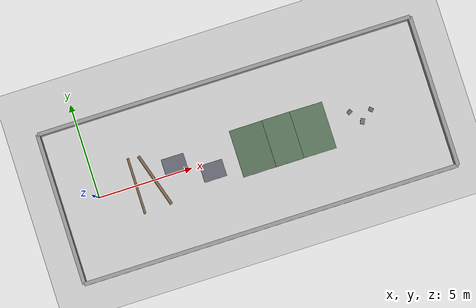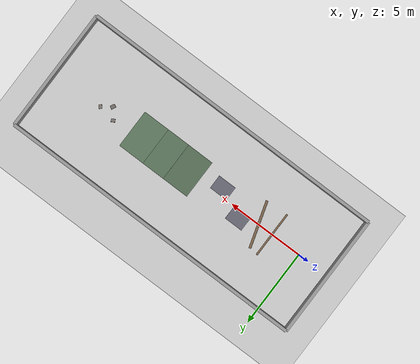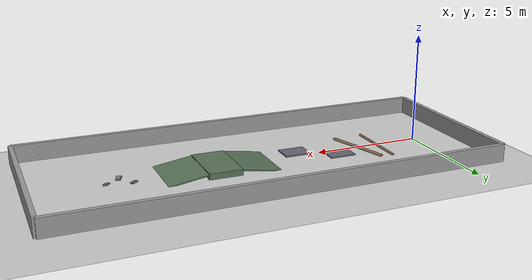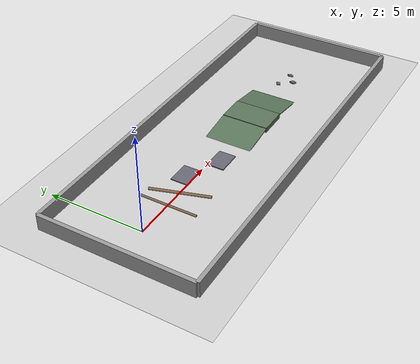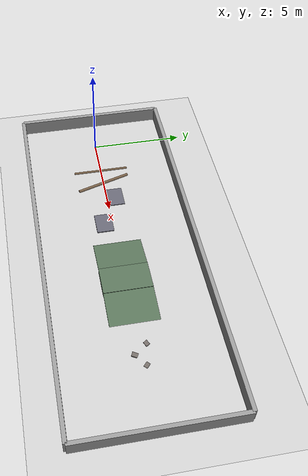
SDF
<?xml version="1.0"?>
<sdf version="1.6">
  <world name="rough_terrain">
    <plugin filename="gz-sim-physics-system" name="gz::sim::systems::Physics"/>
    <plugin filename="gz-sim-user-commands-system" name="gz::sim::systems::UserCommands"/>
    <plugin filename="gz-sim-sensors-system" name="gz::sim::systems::Sensors">
      <render_engine>ogre2</render_engine>
    </plugin>
    <plugin filename="gz-sim-imu-system" name="gz::sim::systems::Imu"/>
    <plugin filename="gz-sim-forcetorque-system" name="ignition::gazebo::systems::ForceTorque"/>
    <plugin filename="gz-sim-contact-system" name="gz::sim::systems::Contact"/>
    <plugin filename="gz-sim-scene-broadcaster-system" name="gz::sim::systems::SceneBroadcaster"/>

    <!-- model://sun 与 model://ground_plane 走 Fuel 解析，在 Ignition 下
         无法离线获取（Error Code 13），改为内联定义 -->
    <light name="sun" type="directional">
      <cast_shadows>true</cast_shadows>
      <pose>0 0 10 0 0 0</pose>
      <diffuse>0.8 0.8 0.8 1</diffuse>
      <specular>0.2 0.2 0.2 1</specular>
      <direction>-0.5 0.1 -0.9</direction>
    </light>

    <model name="ground_plane">
      <static>true</static>
      <link name="link">
        <collision name="collision">
          <geometry><plane><normal>0 0 1</normal><size>100 100</size></plane></geometry>
          <surface><friction><ode><mu>1.0</mu><mu2>1.0</mu2></ode></friction></surface>
        </collision>
        <visual name="visual">
          <geometry><plane><normal>0 0 1</normal><size>100 100</size></plane></geometry>
          <material><ambient>0.8 0.8 0.8 1</ambient><diffuse>0.8 0.8 0.8 1</diffuse></material>
        </visual>
      </link>
    </model>

    <physics type="ode">
      <max_step_size>0.001</max_step_size>
      <real_time_update_rate>1000</real_time_update_rate>
    </physics>

    <!-- 连续起伏带：一排横向减速带（半圆柱），考验左右轮交替冲击 -->
    <model name="bump_1">
      <static>true</static>
      <pose>2.0 0 0 0 0 0</pose>
      <link name="link">
        <collision name="c"><geometry><cylinder><radius>0.06</radius><length>3.0</length></cylinder></geometry></collision>
        <visual name="v"><geometry><cylinder><radius>0.06</radius><length>3.0</length></cylinder></geometry>
          <material><ambient>0.5 0.4 0.3 1</ambient><diffuse>0.5 0.4 0.3 1</diffuse></material></visual>
        <pose>0 0 0 1.5708 0 0</pose>
      </link>
    </model>

    <model name="bump_2">
      <static>true</static>
      <pose>3.0 0 0 0 0 0.3</pose>
      <link name="link">
        <collision name="c"><geometry><cylinder><radius>0.08</radius><length>3.0</length></cylinder></geometry></collision>
        <visual name="v"><geometry><cylinder><radius>0.08</radius><length>3.0</length></cylinder></geometry>
          <material><ambient>0.5 0.4 0.3 1</ambient><diffuse>0.5 0.4 0.3 1</diffuse></material></visual>
        <pose>0 0 0 1.5708 0 0</pose>
      </link>
    </model>

    <!-- 单侧台阶：只有左轮压上，考验侧倾调平。
         高度需 < 轮半径(0.12m) 才能爬上，否则纯轮式无法在无辅助情况下越过。 -->
    <model name="half_step_1">
      <static>true</static>
      <pose>4.2 0.45 0.025 0 0 0</pose>
      <link name="link">
        <collision name="c"><geometry><box><size>1.2 0.9 0.05</size></box></geometry></collision>
        <visual name="v"><geometry><box><size>1.2 0.9 0.05</size></box></geometry>
          <material><ambient>0.4 0.4 0.45 1</ambient><diffuse>0.4 0.4 0.45 1</diffuse></material></visual>
      </link>
    </model>

    <!-- 单侧台阶（右） -->
    <model name="half_step_2">
      <static>true</static>
      <pose>6.0 -0.45 0.03 0 0 0</pose>
      <link name="link">
        <collision name="c"><geometry><box><size>1.2 0.9 0.06</size></box></geometry></collision>
        <visual name="v"><geometry><box><size>1.2 0.9 0.06</size></box></geometry>
          <material><ambient>0.4 0.4 0.45 1</ambient><diffuse>0.4 0.4 0.45 1</diffuse></material></visual>
      </link>
    </model>

    <!-- 斜坡上行 + 平台 + 下行：考验俯仰调平 -->
    <model name="ramp_up">
      <static>true</static>
      <pose>8.2 0 0.075 0 -0.15 0</pose>
      <link name="link">
        <collision name="c"><geometry><box><size>2.0 2.5 0.05</size></box></geometry></collision>
        <visual name="v"><geometry><box><size>2.0 2.5 0.05</size></box></geometry>
          <material><ambient>0.35 0.45 0.35 1</ambient><diffuse>0.35 0.45 0.35 1</diffuse></material></visual>
      </link>
    </model>
    <model name="plateau">
      <static>true</static>
      <pose>9.9 0 0.1375 0 0 0</pose>
      <link name="link">
        <collision name="c"><geometry><box><size>1.5 2.5 0.275</size></box></geometry></collision>
        <visual name="v"><geometry><box><size>1.5 2.5 0.275</size></box></geometry>
          <material><ambient>0.35 0.45 0.35 1</ambient><diffuse>0.35 0.45 0.35 1</diffuse></material></visual>
      </link>
    </model>
    <model name="ramp_down">
      <static>true</static>
      <pose>11.6 0 0.075 0 0.15 0</pose>
      <link name="link">
        <collision name="c"><geometry><box><size>2.0 2.5 0.05</size></box></geometry></collision>
        <visual name="v"><geometry><box><size>2.0 2.5 0.05</size></box></geometry>
          <material><ambient>0.35 0.45 0.35 1</ambient><diffuse>0.35 0.45 0.35 1</diffuse></material></visual>
      </link>
    </model>

    <!-- 碎石区：随机小方块 -->
    <model name="rubble_1">
      <static>true</static>
      <pose>13.6 0.3 0.03 0.2 0.1 0.5</pose>
      <link name="link">
        <collision name="c"><geometry><box><size>0.25 0.2 0.07</size></box></geometry></collision>
        <visual name="v"><geometry><box><size>0.25 0.2 0.07</size></box></geometry>
          <material><ambient>0.45 0.42 0.4 1</ambient><diffuse>0.45 0.42 0.4 1</diffuse></material></visual>
      </link>
    </model>
    <model name="rubble_2">
      <static>true</static>
      <pose>14.1 -0.35 0.03 0.1 0.15 1.1</pose>
      <link name="link">
        <collision name="c"><geometry><box><size>0.3 0.22 0.08</size></box></geometry></collision>
        <visual name="v"><geometry><box><size>0.3 0.22 0.08</size></box></geometry>
          <material><ambient>0.45 0.42 0.4 1</ambient><diffuse>0.45 0.42 0.4 1</diffuse></material></visual>
      </link>
    </model>
    <model name="rubble_3">
      <static>true</static>
      <pose>14.7 0.1 0.025 0.25 0.05 0.8</pose>
      <link name="link">
        <collision name="c"><geometry><box><size>0.2 0.25 0.06</size></box></geometry></collision>
        <visual name="v"><geometry><box><size>0.2 0.25 0.06</size></box></geometry>
          <material><ambient>0.45 0.42 0.4 1</ambient><diffuse>0.45 0.42 0.4 1</diffuse></material></visual>
      </link>
    </model>

    <!-- 四周围墙，给 SLAM 提供回环特征 -->
    <model name="wall_n">
      <static>true</static>
      <pose>8 4 0.4 0 0 0</pose>
      <link name="link">
        <collision name="c"><geometry><box><size>20 0.2 0.8</size></box></geometry></collision>
        <visual name="v"><geometry><box><size>20 0.2 0.8</size></box></geometry>
          <material><ambient>0.6 0.6 0.6 1</ambient><diffuse>0.6 0.6 0.6 1</diffuse></material></visual>
      </link>
    </model>
    <model name="wall_s">
      <static>true</static>
      <pose>8 -4 0.4 0 0 0</pose>
      <link name="link">
        <collision name="c"><geometry><box><size>20 0.2 0.8</size></box></geometry></collision>
        <visual name="v"><geometry><box><size>20 0.2 0.8</size></box></geometry>
          <material><ambient>0.6 0.6 0.6 1</ambient><diffuse>0.6 0.6 0.6 1</diffuse></material></visual>
      </link>
    </model>
    <model name="wall_e">
      <static>true</static>
      <pose>18 0 0.4 0 0 0</pose>
      <link name="link">
        <collision name="c"><geometry><box><size>0.2 8 0.8</size></box></geometry></collision>
        <visual name="v"><geometry><box><size>0.2 8 0.8</size></box></geometry>
          <material><ambient>0.6 0.6 0.6 1</ambient><diffuse>0.6 0.6 0.6 1</diffuse></material></visual>
      </link>
    </model>
    <model name="wall_w">
      <static>true</static>
      <pose>-2 0 0.4 0 0 0</pose>
      <link name="link">
        <collision name="c"><geometry><box><size>0.2 8 0.8</size></box></geometry></collision>
        <visual name="v"><geometry><box><size>0.2 8 0.8</size></box></geometry>
          <material><ambient>0.6 0.6 0.6 1</ambient><diffuse>0.6 0.6 0.6 1</diffuse></material></visual>
      </link>
    </model>

  </world>
</sdf>
